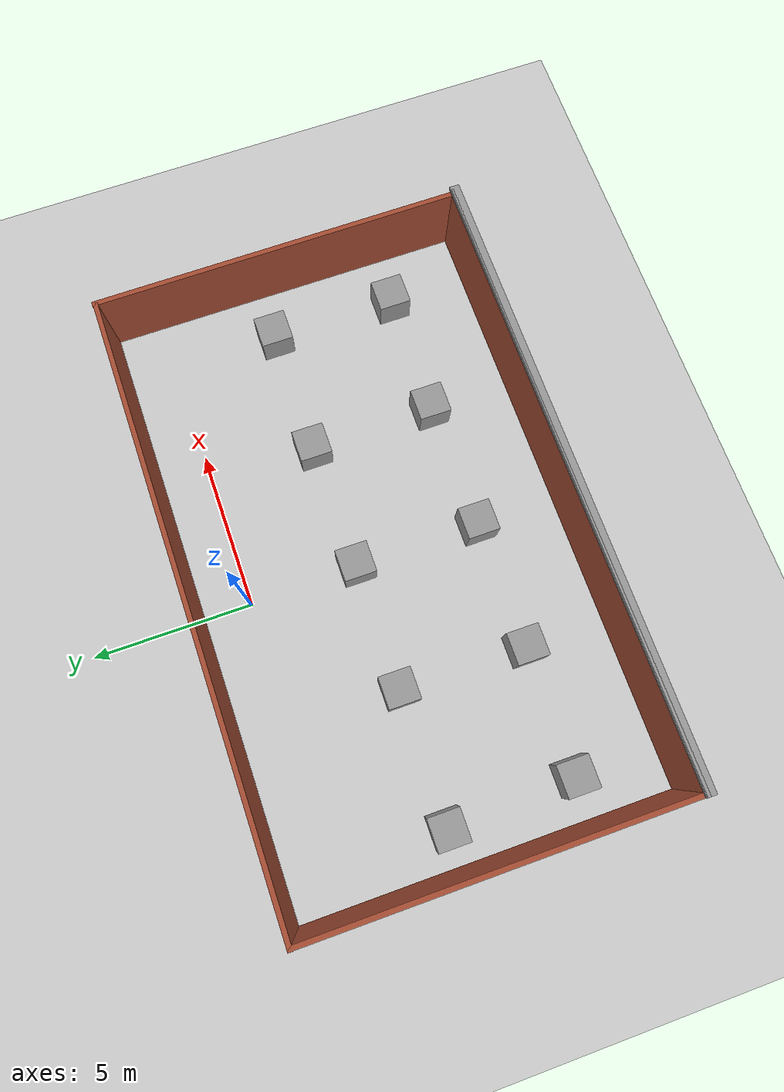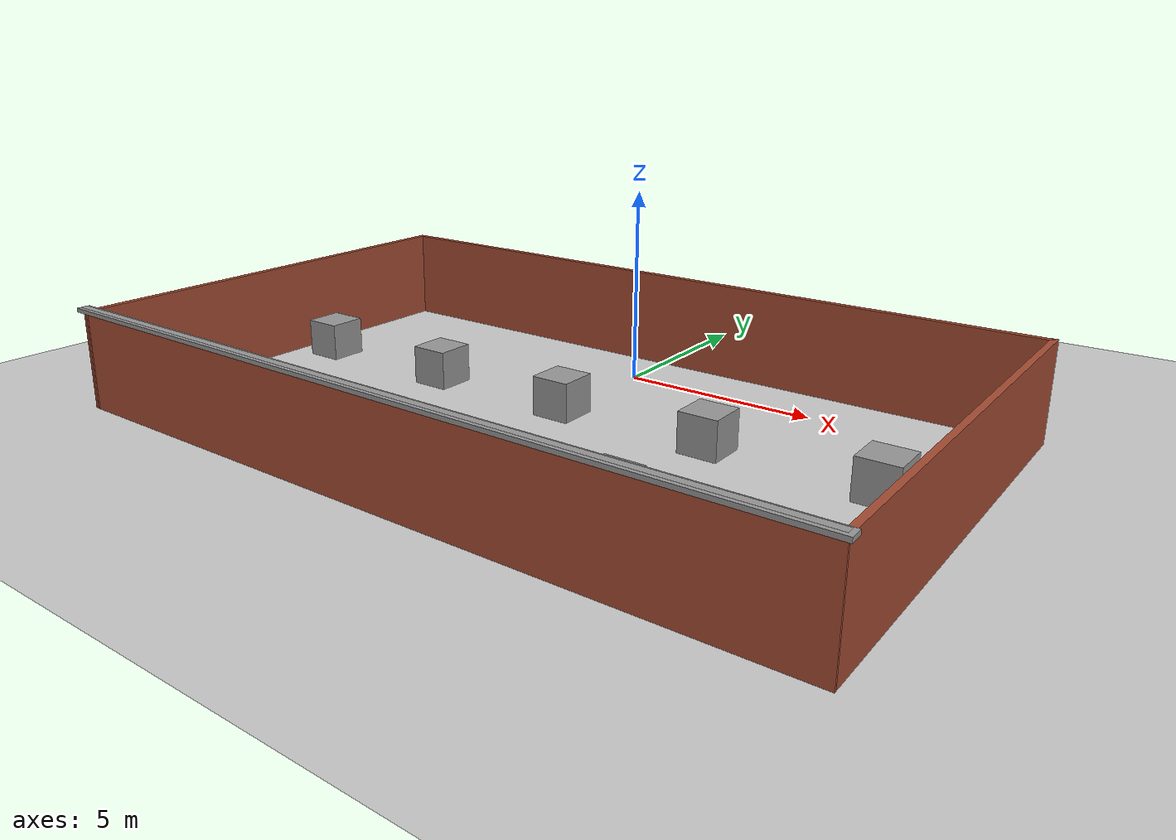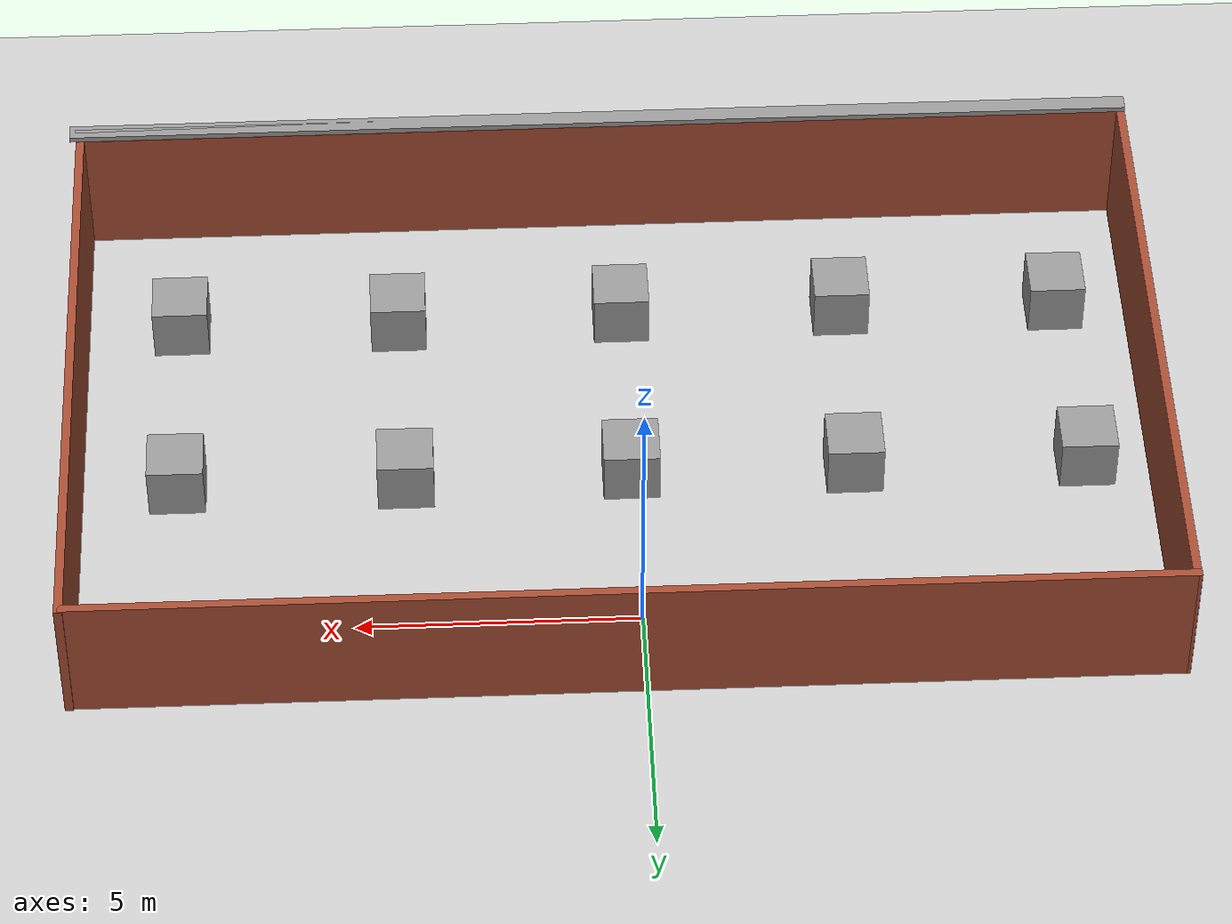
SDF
<sdf version="1.6">
 <world name="default">
  <light name="sun" type="directional">
   <pose>0 0 10 0 -0 0</pose>
   <diffuse>0.8 0.8 0.8 1</diffuse>
   <specular>0.1 0.1 0.1 1</specular>
   <attenuation>
    <range>1000</range>
    <constant>0.9</constant>
    <linear>0.01</linear>
    <quadratic>0.001</quadratic>
   </attenuation>
   <direction>-0.5 0.5 -1</direction>
  </light>
  <model name="ground_plane">
   <static>1</static>
   <link name="link">
    <collision name="collision">
     <geometry><plane><normal>0 0 1</normal><size>100 100</size></plane></geometry>
     <surface><friction><ode><mu>100</mu><mu2>50</mu2></ode></friction></surface>
    </collision>
    <visual name="visual">
     <cast_shadows>0</cast_shadows>
     <geometry><plane><normal>0 0 1</normal><size>100 100</size></plane></geometry>
     <material>
      <script><uri>file://media/materials/scripts/gazebo.material</uri><name>Gazebo/Grey</name></script>
     </material>
    </visual>
   </link>
  </model>
  <gravity>0 0 -9.8</gravity>
  <magnetic_field>6e-06 2.3e-05 -4.2e-05</magnetic_field>
  <atmosphere type="adiabatic"/>
  <physics name="default_physics" default="0" type="ode">
   <max_step_size>0.001</max_step_size>
   <real_time_factor>1</real_time_factor>
   <real_time_update_rate>1000</real_time_update_rate>
  </physics>
  <scene><ambient>0.4 0.4 0.4 1</ambient><background>0.7 0.7 0.7 1</background><shadows>1</shadows></scene>
  <spherical_coordinates>
   <surface_model>EARTH_WGS84</surface_model>
   <latitude_deg>0</latitude_deg>
   <longitude_deg>0</longitude_deg>
   <elevation>0</elevation>
   <heading_deg>0</heading_deg>
  </spherical_coordinates>
  <model name="unit_box_0">
   <static>1</static>
   <pose>0.063937 -3.38541 0.498898 0.002324 3.5e-05 0.000654</pose>
   <link name="link">
    <inertial>
     <mass>1000</mass>
     <inertia>
      <ixx>0.166667</ixx>
      <ixy>0</ixy>
      <ixz>0</ixz>
      <iyy>0.166667</iyy>
      <iyz>0</iyz>
      <izz>0.166667</izz>
     </inertia>
    </inertial>
    <collision name="collision"><geometry><box><size>1 1 1</size></box></geometry></collision>
    <visual name="visual">
     <geometry><box><size>1 1 1</size></box></geometry>
     <material>
      <script><name>Gazebo/Grey</name><uri>file://media/materials/scripts/gazebo.material</uri></script>
     </material>
    </visual>
   </link>
  </model>
  <model name="unit_box_1">
   <static>1</static>
   <pose>4.07317 -3.32138 0.498898 0.002324 3.5e-05 0.000654</pose>
   <link name="link">
    <inertial>
     <mass>1000</mass>
     <inertia>
      <ixx>0.166667</ixx>
      <ixy>0</ixy>
      <ixz>0</ixz>
      <iyy>0.166667</iyy>
      <iyz>0</iyz>
      <izz>0.166667</izz>
     </inertia>
    </inertial>
    <collision name="collision"><geometry><box><size>1 1 1</size></box></geometry></collision>
    <visual name="visual">
     <geometry><box><size>1 1 1</size></box></geometry>
     <material>
      <script><name>Gazebo/Grey</name><uri>file://media/materials/scripts/gazebo.material</uri></script>
     </material>
    </visual>
   </link>
  </model>
  <model name="unit_box_2">
   <static>1</static>
   <pose>-3.91091 -3.36665 0.498898 0.002324 3.5e-05 0.000653</pose>
   <link name="link">
    <inertial>
     <mass>1000</mass>
     <inertia>
      <ixx>0.166667</ixx>
      <ixy>0</ixy>
      <ixz>0</ixz>
      <iyy>0.166667</iyy>
      <iyz>0</iyz>
      <izz>0.166667</izz>
     </inertia>
    </inertial>
    <collision name="collision"><geometry><box><size>1 1 1</size></box></geometry></collision>
    <visual name="visual">
     <geometry><box><size>1 1 1</size></box></geometry>
     <material>
      <script><name>Gazebo/Grey</name><uri>file://media/materials/scripts/gazebo.material</uri></script>
     </material>
    </visual>
   </link>
  </model>
  <model name="unit_box_3">
   <static>1</static>
   <pose>-3.95048 -7.3486 0.498898 0.002324 3.5e-05 0.000654</pose>
   <link name="link">
    <inertial>
     <mass>1000</mass>
     <inertia>
      <ixx>0.166667</ixx>
      <ixy>0</ixy>
      <ixz>0</ixz>
      <iyy>0.166667</iyy>
      <iyz>0</iyz>
      <izz>0.166667</izz>
     </inertia>
    </inertial>
    <collision name="collision"><geometry><box><size>1 1 1</size></box></geometry></collision>
    <visual name="visual">
     <geometry><box><size>1 1 1</size></box></geometry>
     <material>
      <script><name>Gazebo/Grey</name><uri>file://media/materials/scripts/gazebo.material</uri></script>
     </material>
    </visual>
   </link>
  </model>
  <model name="unit_box_4">
   <static>1</static>
   <pose>0.077643 -7.33792 0.498898 0.002324 3.5e-05 0.000654</pose>
   <link name="link">
    <inertial>
     <mass>1000</mass>
     <inertia>
      <ixx>0.166667</ixx>
      <ixy>0</ixy>
      <ixz>0</ixz>
      <iyy>0.166667</iyy>
      <iyz>0</iyz>
      <izz>0.166667</izz>
     </inertia>
    </inertial>
    <collision name="collision"><geometry><box><size>1 1 1</size></box></geometry></collision>
    <visual name="visual">
     <geometry><box><size>1 1 1</size></box></geometry>
     <material>
      <script><name>Gazebo/Grey</name><uri>file://media/materials/scripts/gazebo.material</uri></script>
     </material>
    </visual>
   </link>
  </model>
  <model name="unit_box_5">
   <static>1</static>
   <pose>4.1512 -7.27602 0.498898 0.002324 3.5e-05 0.000654</pose>
   <link name="link">
    <inertial>
     <mass>1000</mass>
     <inertia>
      <ixx>0.166667</ixx>
      <ixy>0</ixy>
      <ixz>0</ixz>
      <iyy>0.166667</iyy>
      <iyz>0</iyz>
      <izz>0.166667</izz>
     </inertia>
    </inertial>
    <collision name="collision"><geometry><box><size>1 1 1</size></box></geometry></collision>
    <visual name="visual">
     <geometry><box><size>1 1 1</size></box></geometry>
     <material>
      <script><name>Gazebo/Grey</name><uri>file://media/materials/scripts/gazebo.material</uri></script>
     </material>
    </visual>
   </link>
  </model>
  <model name="unit_box_6">
   <static>1</static>
   <pose>-7.89863 -7.31493 0.498898 0.002324 3.5e-05 0.000653</pose>
   <link name="link">
    <inertial>
     <mass>1000</mass>
     <inertia>
      <ixx>0.166667</ixx>
      <ixy>0</ixy>
      <ixz>0</ixz>
      <iyy>0.166667</iyy>
      <iyz>0</iyz>
      <izz>0.166667</izz>
     </inertia>
    </inertial>
    <collision name="collision"><geometry><box><size>1 1 1</size></box></geometry></collision>
    <visual name="visual">
     <geometry><box><size>1 1 1</size></box></geometry>
     <material>
      <script><name>Gazebo/Grey</name><uri>file://media/materials/scripts/gazebo.material</uri></script>
     </material>
    </visual>
   </link>
  </model>
  <model name="unit_box_7">
   <static>1</static>
   <pose>-8.059 -3.35579 0.498898 0.002324 3.5e-05 0.000654</pose>
   <link name="link">
    <inertial>
     <mass>1000</mass>
     <inertia>
      <ixx>0.166667</ixx>
      <ixy>0</ixy>
      <ixz>0</ixz>
      <iyy>0.166667</iyy>
      <iyz>0</iyz>
      <izz>0.166667</izz>
     </inertia>
    </inertial>
    <collision name="collision"><geometry><box><size>1 1 1</size></box></geometry></collision>
    <visual name="visual">
     <geometry><box><size>1 1 1</size></box></geometry>
     <material>
      <script><name>Gazebo/Grey</name><uri>file://media/materials/scripts/gazebo.material</uri></script>
     </material>
    </visual>
   </link>
  </model>
  <model name="unit_box_8">
   <static>1</static>
   <pose>8.11537 -7.34035 0.498898 0.002324 3.5e-05 0.000653</pose>
   <link name="link">
    <inertial>
     <mass>1000</mass>
     <inertia>
      <ixx>0.166667</ixx>
      <ixy>0</ixy>
      <ixz>0</ixz>
      <iyy>0.166667</iyy>
      <iyz>0</iyz>
      <izz>0.166667</izz>
     </inertia>
    </inertial>
    <collision name="collision"><geometry><box><size>1 1 1</size></box></geometry></collision>
    <visual name="visual">
     <geometry><box><size>1 1 1</size></box></geometry>
     <material>
      <script><name>Gazebo/Grey</name><uri>file://media/materials/scripts/gazebo.material</uri></script>
     </material>
    </visual>
   </link>
  </model>
  <model name="unit_box_9">
   <static>1</static>
   <pose>8.13109 -3.36421 0.498898 0.002324 3.5e-05 0.000654</pose>
   <link name="link">
    <inertial>
     <mass>1000</mass>
     <inertia>
      <ixx>0.166667</ixx>
      <ixy>0</ixy>
      <ixz>0</ixz>
      <iyy>0.166667</iyy>
      <iyz>0</iyz>
      <izz>0.166667</izz>
     </inertia>
    </inertial>
    <collision name="collision"><geometry><box><size>1 1 1</size></box></geometry></collision>
    <visual name="visual">
     <geometry><box><size>1 1 1</size></box></geometry>
     <material>
      <script><name>Gazebo/Grey</name><uri>file://media/materials/scripts/gazebo.material</uri></script>
     </material>
    </visual>
   </link>
  </model>
  <model name="warehouse.world">
   <pose>0.302695 -4.21529 0 0 -0 0</pose>
   <link name="Floor_0">
    <collision name="Floor_0_Collision">
     <geometry><box><size>19.3401 0.182408 0.1</size></box></geometry>
     <pose>0 0 0.05 0 -0 0</pose>
    </collision>
    <visual name="Floor_0_Visual">
     <pose>0 0 0.05 0 -0 0</pose>
     <geometry><box><size>19.3401 0.182408 0.1</size></box></geometry>
     <material>
      <script><uri>file://media/materials/scripts/gazebo.material</uri><name>Gazebo/Grey</name></script>
      <ambient>1 1 1 1</ambient>
     </material>
    </visual>
    <pose>0.004243 -5.85516 2.5 0 -0 0</pose>
   </link>
   <link name="Floor_1">
    <collision name="Floor_1_Collision">
     <geometry><box><size>19.4416 0.308312 0.1</size></box></geometry>
     <pose>0 0 0.05 0 -0 0</pose>
    </collision>
    <visual name="Floor_1_Visual">
     <pose>0 0 0.05 0 -0 0</pose>
     <geometry><box><size>19.4416 0.308312 0.1</size></box></geometry>
     <material>
      <script><uri>file://media/materials/scripts/gazebo.material</uri><name>Gazebo/Grey</name></script>
      <ambient>1 1 1 1</ambient>
     </material>
    </visual>
    <pose>0.054573 -5.88861 2.5 0 -0 0</pose>
   </link>
   <link name="Wall_1">
    <collision name="Wall_1_Collision">
     <geometry><box><size>19.25 0.15 2.5</size></box></geometry>
     <pose>0 0 1.25 0 -0 0</pose>
    </collision>
    <visual name="Wall_1_Visual">
     <pose>0 0 1.25 0 -0 0</pose>
     <geometry><box><size>19.25 0.15 2.5</size></box></geometry>
     <material>
      <script><uri>file://media/materials/scripts/gazebo.material</uri><name>Gazebo/Bricks</name></script>
      <ambient>1 1 1 1</ambient>
     </material>
    </visual>
    <pose>-0.021641 5.78994 0 0 -0 3.14159</pose>
   </link>
   <link name="Wall_2">
    <collision name="Wall_2_Collision">
     <geometry><box><size>11.75 0.15 2.5</size></box></geometry>
     <pose>0 0 1.25 0 -0 0</pose>
    </collision>
    <visual name="Wall_2_Visual">
     <pose>0 0 1.25 0 -0 0</pose>
     <geometry><box><size>11.75 0.15 2.5</size></box></geometry>
     <material>
      <script><uri>file://media/materials/scripts/gazebo.material</uri><name>Gazebo/Bricks</name></script>
      <ambient>1 1 1 1</ambient>
     </material>
    </visual>
    <pose>-9.57828 -0.010061 0 0 0 -1.57293</pose>
   </link>
   <link name="Wall_3">
    <collision name="Wall_3_Collision">
     <geometry><box><size>19.3314 0.15 2.5</size></box></geometry>
     <pose>0 0 1.25 0 -0 0</pose>
    </collision>
    <visual name="Wall_3_Visual">
     <pose>0 0 1.25 0 -0 0</pose>
     <geometry><box><size>19.3314 0.15 2.5</size></box></geometry>
     <material>
      <script><uri>file://media/materials/scripts/gazebo.material</uri><name>Gazebo/Bricks</name></script>
      <ambient>1 1 1 1</ambient>
     </material>
    </visual>
    <pose>5.1e-05 -5.80568 0 0 -0 0.000457</pose>
   </link>
   <link name="Wall_4">
    <collision name="Wall_4_Collision">
     <geometry><box><size>11.75 0.15 2.5</size></box></geometry>
     <pose>0 0 1.25 0 -0 0</pose>
    </collision>
    <visual name="Wall_4_Visual">
     <pose>0 0 1.25 0 -0 0</pose>
     <geometry><box><size>11.75 0.15 2.5</size></box></geometry>
     <material>
      <script><uri>file://media/materials/scripts/gazebo.material</uri><name>Gazebo/Bricks</name></script>
      <ambient>1 1 1 1</ambient>
     </material>
    </visual>
    <pose>9.59074 0.010207 0 0 -0 1.5708</pose>
   </link>
   <static>1</static>
  </model>
 </world>
</sdf>
